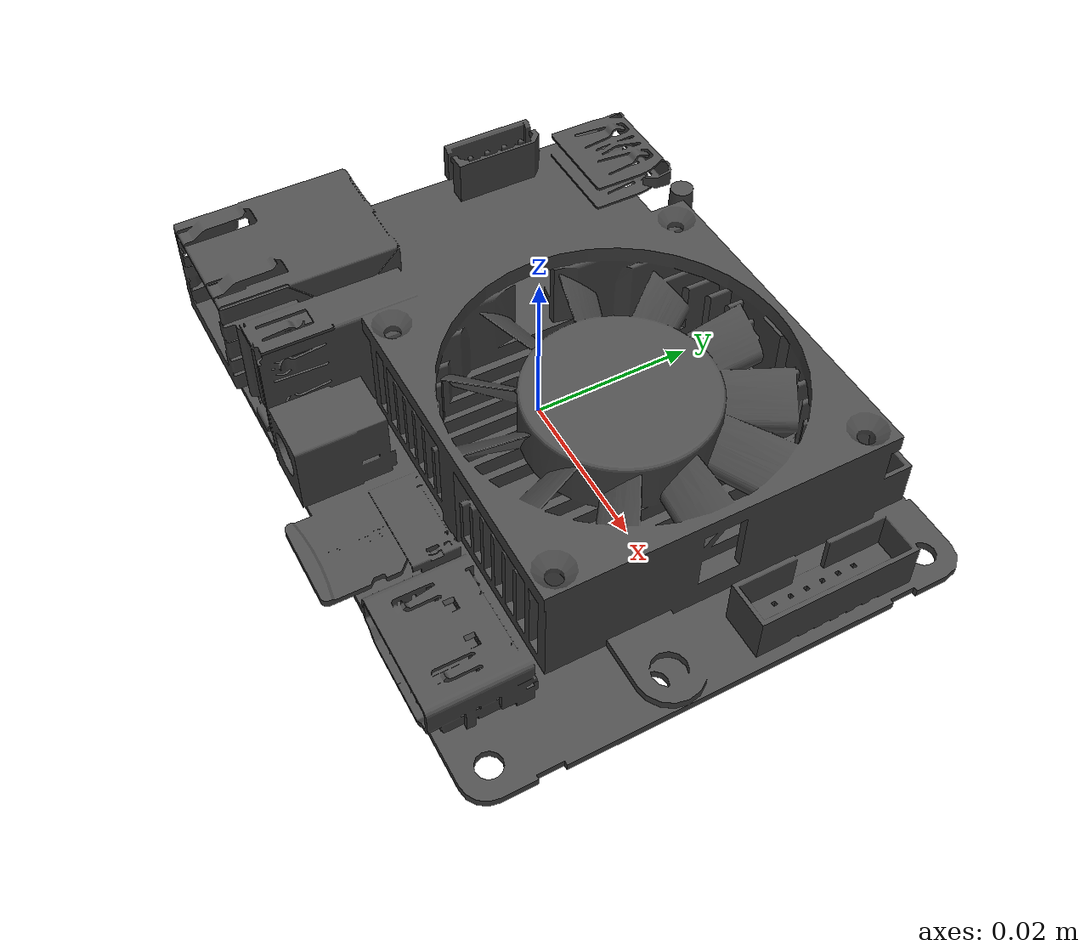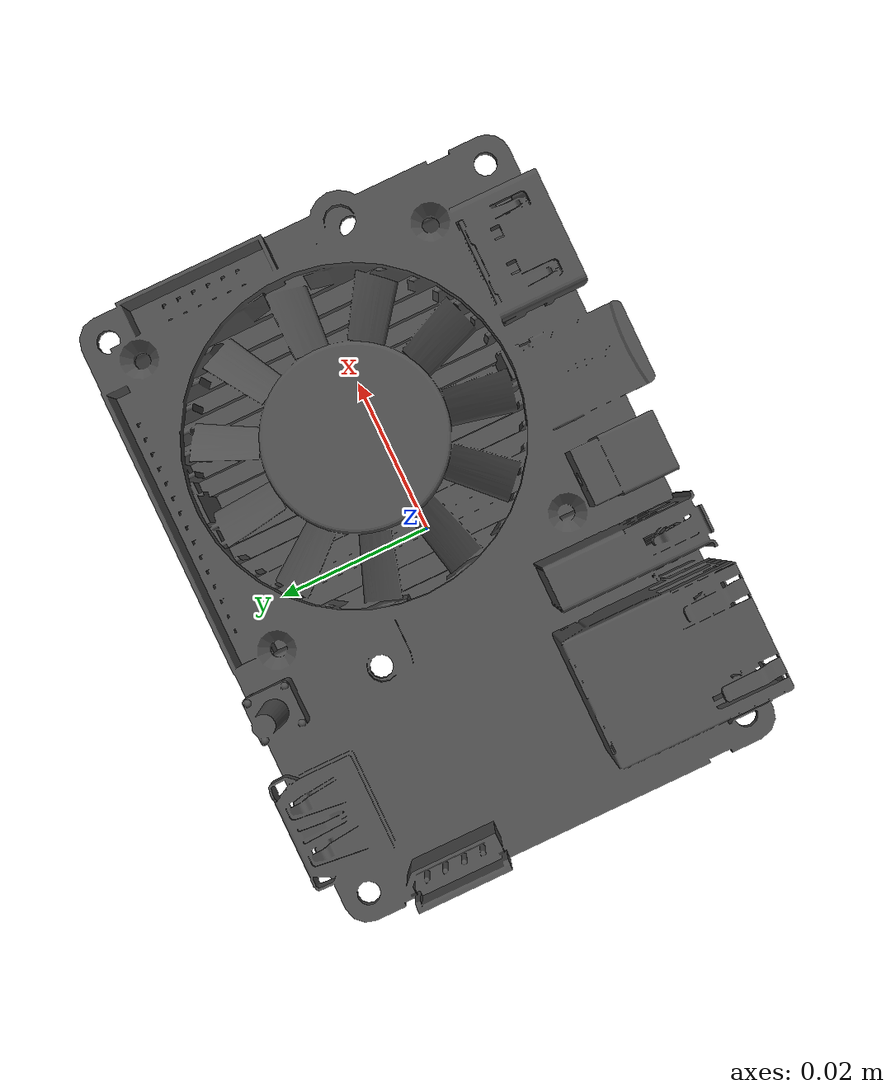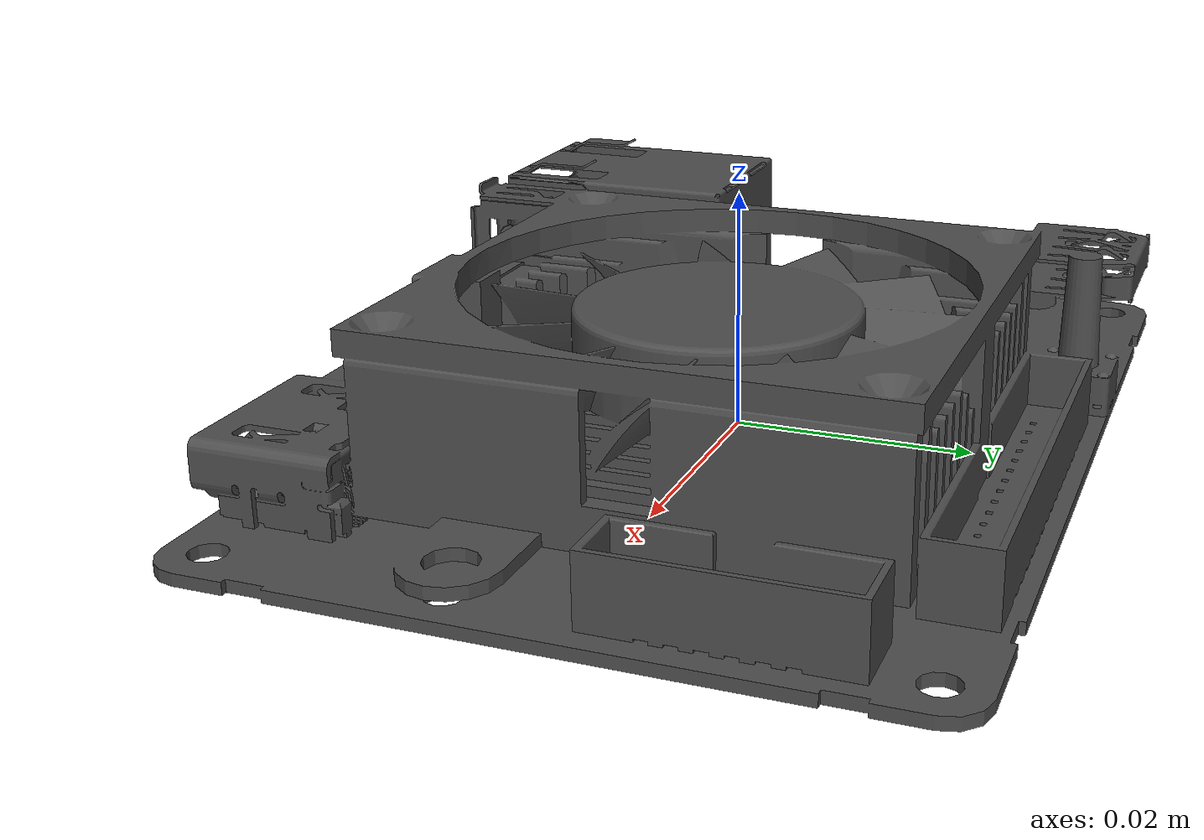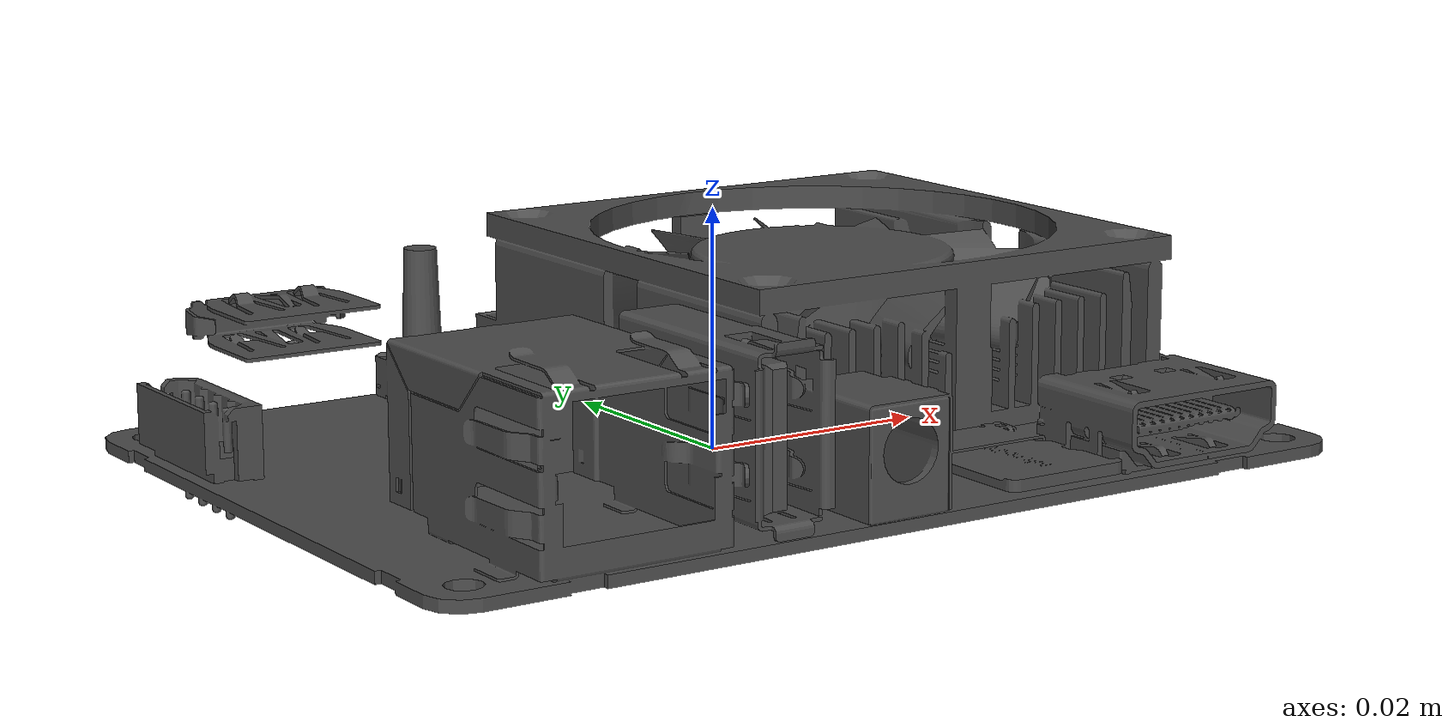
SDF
<?xml version="1.0" ?>
<sdf version="1.6">
  <model name="odroid_xu4">
    <link name="link">

      <inertial>
        <pose>0.0057413 0.00030748 -0.0052843 0 -0 0</pose>
        <mass>0.08</mass>
        <inertia>
          <ixx>4.4834E-06</ixx>
          <ixy>3.2726E-07</ixy>
          <ixz>1.7419E-07</ixz>
          <iyy>6.5755E-06</iyy>
          <iyz>1.4639E-08</iyz>
          <izz>1.0308E-05</izz>
        </inertia>
      </inertial>

      <visual name="laser_visual">
        <pose>0 0 0 3.14 -0 0</pose>
        <geometry>
          <mesh>
            <scale>1 1 1</scale>
            <uri>model://odroid_xu4/mesh.STL</uri>
          </mesh>
        </geometry>
        <material>
          <script>
            <name>Gazebo/DarkGrey</name>
            <uri>file://media/materials/scripts/gazebo.material</uri>
          </script>
        </material>
      </visual>
    </link>
  </model>
</sdf>

<!-- vim: set et fenc= ff=unix sts=0 sw=2 ts=2 : -->
